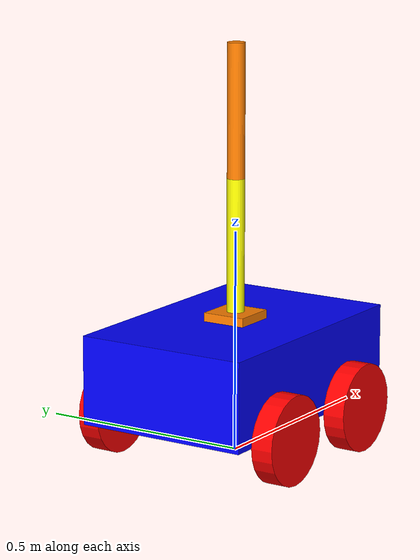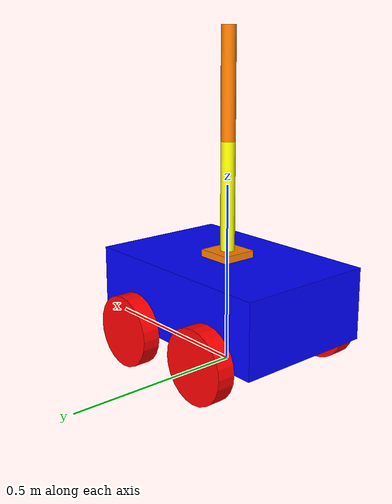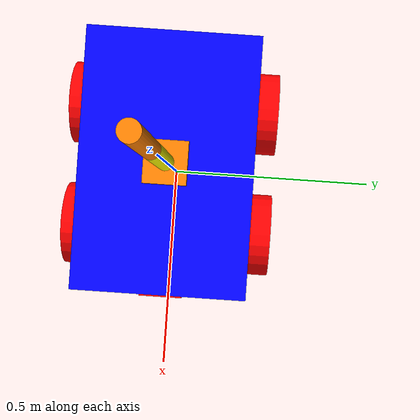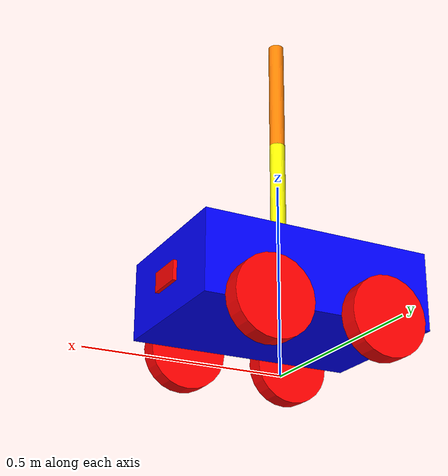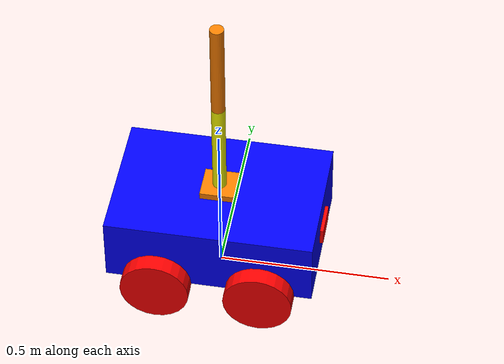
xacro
<?xml version="1.0"?>
<robot name = "my_robot" xmlns:xacro= "https://www.ros.org/wiki/xacro">

    <xacro:include filename="common_properties.xacro" />
    <xacro:include filename="mobile_base.xacro" />
    <xacro:include filename="mobile_base_gazebo.xacro" />
    <xacro:include filename="camera.xacro" />
    <xacro:include filename="arm.xacro"/>

</robot>

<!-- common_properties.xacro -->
<robot xmlns:xacro= "https://www.ros.org/wiki/xacro">

    <!--This is where the colours are defined -->
    <material name="red"><color rgba="1 0 0 1"/></material>
    <material name="green"><color rgba="0 1 0 1"/></material>
    <material name="blue"><color rgba="0 0 1 1"/></material>
    <material name="cyan"><color rgba="0 1 1 1"/></material>
    <material name="magenta"><color rgba="1 0 1 1"/></material>
    <material name="yellow"><color rgba="1 1 0 1"/></material>
    <material name="black"><color rgba="0 0 0 1"/></material>
    <material name="white"><color rgba="1 1 1 1"/></material>
    <material name="grey"><color rgba="0.5 0.5 0.5 1"/></material>
    <material name="orange"><color rgba="1 0.5 0 1"/></material>
    <material name="purple"><color rgba="0.5 0 0.5 1"/></material>
    <material name="pink"><color rgba="1 0.75 0.8 1"/></material>
    <material name="brown"><color rgba="0.6 0.3 0.1 1"/></material>
    <material name="light_grey"><color rgba="0.8 0.8 0.8 1"/></material>
    <material name="dark_grey"><color rgba="0.2 0.2 0.2 1"/></material>
    <material name="lime"><color rgba="0.5 1 0 1"/></material>
    <material name="teal"><color rgba="0 0.5 0.5 1"/></material>
    <material name="navy"><color rgba="0 0 0.5 1"/></material>
    <material name="maroon"><color rgba="0.5 0 0 1"/></material>
    <material name="olive"><color rgba="0.5 0.5 0 1"/></material>

    <xacro:macro name="box_inertia" params="m x y z o_xyz o_rpy">
        <inertial>
            <mass value="${m}"/>
            <origin xyz="${o_xyz}" rpy="${o_rpy}"/>
            <inertia
            ixx="${(m/12.0) * (y*y + z*z)}" ixy="0.0" ixz="0.0"
            iyy="${(m/12.0) * (x*x + z*z)}" iyz="0.0"
            izz="${(m/12.0) * (x*x + y*y)}"/>
        </inertial>
    </xacro:macro>

    <xacro:macro name="cylinder_inertia" params="m r l o_xyz o_rpy">
        <inertial>
            <mass value="${m}" />
            <origin xyz="${o_xyz}" rpy="${o_rpy}" />
            <inertia
            ixx="${(m/12.0) * (3*r*r + l*l)}" ixy="0.0" ixz="0.0"
            iyy="${(m/12.0) * (3*r*r + l*l)}" iyz="0.0"
            izz="${(m/2) * (r*r)}"/>
        </inertial>
    </xacro:macro>

        <xacro:macro name="sphere_inertia" params="m r o_xyz o_rpy">
        <inertial>
            <mass value="${m}" />
            <origin xyz="${o_xyz}" rpy="${o_rpy}" />
            <inertia
            ixx="${(2*m*r*r/5.0)}" ixy="0.0" ixz="0.0"
            iyy="${(2*m*r*r/5.0)}" iyz="0.0"
            izz="${(2*m*r*r/5.0)}"/>
        </inertial>
    </xacro:macro>

</robot>

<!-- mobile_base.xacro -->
<robot xmlns:xacro="http://www.ros.org/wiki/xacro">

    <xacro:property name="base_length" value="0.6" />
    <xacro:property name="base_width" value="0.4" />
    <xacro:property name="base_height" value="0.2" />
    <xacro:property name="wheel_radius" value="0.1" />
    <xacro:property name="wheel_length" value="0.05" />

    <link name="imu_frame"/>

    <joint name="imu_joint" type="fixed">
        <parent link="base_link"/>
        <child link="imu_frame"/>
        <origin xyz="0.0 0.0 0.08" rpy="0.0 0.0 0.0"/>
    </joint>

    <link name="base_link">
        <visual>
            <geometry>
                <box size="${base_length} ${base_width} ${base_height}" />
            </geometry>
            <origin xyz="0 0 ${base_height / 2.0}" rpy="0 0 0" />
            <material name="blue" />
        </visual>
        <collision>
            <geometry>
                <box size="${base_length} ${base_width} ${base_height}" />
            </geometry>
            <origin xyz="0 0 ${base_height / 2.0}" rpy="0 0 0" />
        </collision>
        <xacro:box_inertia m="100.0" l="${2*base_length}" w="${2*base_width}" h="${2*base_height}"
                           xyz="0 0 ${base_height / 2.0}" rpy="0 0 0" />
    </link>

    <xacro:macro name="wheel_link" params="prefix">
        <link name="${prefix}_wheel_link">
            <visual>
                <geometry>
                    <cylinder radius="${wheel_radius}" length="${wheel_length}" />
                </geometry>
                <origin xyz="0 0 0" rpy="${pi / 2.0} 0 0" />
                <material name="red" />
            </visual>
            <collision>
                <geometry>
                    <cylinder radius="${wheel_radius}" length="${wheel_length}" />
                </geometry>
                <origin xyz="0 0 0" rpy="${pi / 2.0} 0 0" />
            </collision>
            <xacro:cylinder_inertia m="10.0" r="${2*wheel_radius}" h="${2*wheel_length}"
                                    xyz="0 0 0" rpy="${pi / 2.0} 0 0" />
        </link>
    </xacro:macro>

    <xacro:wheel_link prefix="right_back" />
    <xacro:wheel_link prefix="left_back" />
    <xacro:wheel_link prefix="right_front" />
    <xacro:wheel_link prefix="left_front" />

    <link name="base_footprint">
    </link>

    <joint name="base_right_back_wheel_joint" type="continuous">
        <parent link="base_link" />
        <child link="right_back_wheel_link" />
        <origin xyz="${-base_length / 4.0} ${-(base_width + wheel_length) / 2.0} 0" rpy="0 0 0" />
        <axis xyz="0 1 0" />
    </joint>

    <joint name="base_right_front_wheel_joint" type="continuous">
        <parent link="base_link" />
        <child link="right_front_wheel_link" />
        <origin xyz="${(base_length) / 4.0} ${-(base_width + wheel_length) / 2.0} 0" rpy="0 0 0" />
        <axis xyz="0 1 0" />
    </joint>

     <joint name="base_left_back_wheel_joint" type="continuous">
        <parent link="base_link" />
        <child link="left_back_wheel_link" />
        <origin xyz="${-base_length / 4.0} ${(base_width + wheel_length) / 2.0} 0" rpy="0 0 0" />
        <axis xyz="0 1 0" />
    </joint>

    <joint name="base_left_front_wheel_joint" type="continuous">
        <parent link="base_link" />
        <child link="left_front_wheel_link" />
        <origin xyz="${base_length / 4.0} ${(base_width + wheel_length) / 2.0} 0" rpy="0 0 0" />
        <axis xyz="0 1 0" />
    </joint>

    <joint name="base_footprint_joint" type="fixed">
        <parent link="base_footprint" />
        <child link="base_link" />
        <origin xyz="0 0 ${wheel_radius}" rpy="0 0 0" />
    </joint>

</robot>

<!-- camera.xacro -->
<robot xmlns:xacro="http://www.ros.org/wiki/xacro">

<xacro:property name="camera_length" value="0.01" />
<xacro:property name="camera_width" value="0.1" />
<xacro:property name="camera_height" value="0.05" />

    <link name="camera_link">
        <visual>
            <geometry>
                <box size="${camera_length} ${camera_width} ${camera_height}" />
            </geometry>
            <material name="red"/>
        </visual>
        <collision>
            <geometry>
                <box size="${camera_length} ${camera_width} ${camera_height}" />
            </geometry>
        </collision>
        <xacro:box_inertia m ="0.1" x= "${camera_length}" y ="${camera_width}" z ="${camera_height}"
                            o_xyz = "0 0 0" o_rpy = "0 0 0" />
    </link>

    <joint name="base_camera_joint" type="fixed">
        <parent link="base_link" />
        <child link="camera_link" />
        <origin xyz="${(base_length + camera_length) / 2.0 } 0 ${base_height / 2.0}" rpy="0 0 0" />

    </joint>

    <link name = "camera_link_optical"/>

    <joint name="camera_optical_joint" type="fixed">

        <origin xyz="0 0 0" rpy="${-pi/2} 0 ${-pi/2}"/>
        <parent link="camera_link"/>
        <child link="camera_link_optical"/>
    </joint>

    <gazebo reference = "camera_link">
        <sensor name = "camera" type = "camera" >
            <camera>
                <horizontal_fov>1.3962634</horizontal_fov>
                <image>
                    <width>640</width>
                    <height>480</height>
                    <format>R8G8B8</format>
                </image>
                <clip>
                    <near>0.1</near>
                    <far>15</far>
                </clip>
                <noise>
                    <type>gaussian</type>
                    <mean>0.0</mean>
                    <stddev>0.007</stddev>
                </noise>
                <optical_frame_id>camera_link_optical</optical_frame_id>
                <camera_info_topic>camera/camera_info</camera_info_topic>
            </camera>
            <always_on>1</always_on>
            <update_rate>20</update_rate>
            <visualize>true</visualize>
            <topic>camera/image_raw</topic>
        </sensor>
    </gazebo>
</robot>

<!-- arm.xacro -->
<robot name = "arm" xmlns:xacro= "https://www.ros.org/wiki/xacro">

    <xacro:property name="arm_base_length" value="0.1" />
    <xacro:property name="arm_base_width" value="0.1" />
    <xacro:property name="arm_base_height" value="0.02" />
    <xacro:property name= "arm_cylinder_radius" value = "0.02"/>
    <xacro:property name= "arm_cylinder_length" value = "0.3"/>

    <link name="arm_base_link">
        <visual>
            <origin xyz="0 0 0" rpy="0 0 0" />
            <geometry>
                <box size="${arm_base_length} ${arm_base_width} ${arm_base_height}" />
            </geometry>
            <material name="orange"/>
        </visual>
        <collision>
            <origin xyz="0 0 0" rpy="0 0 0" />
            <geometry>
                <box size="${arm_base_length} ${arm_base_width} ${arm_base_height}" />
            </geometry>
        </collision>
        <xacro:box_inertia m="0.5" x="${arm_base_length}" y="${arm_base_width}" z="${arm_base_height}"
                           o_xyz="0 0 0" o_rpy="0 0 0" />
    </link>

    <link name="forearm_link">
        <visual>
            <origin xyz="0 0 ${arm_cylinder_length / 2.0}" rpy="0 0 0" />
            <geometry>
                <cylinder radius="${arm_cylinder_radius}" length="${arm_cylinder_length}" />
            </geometry>
            <material name="yellow"/>
        </visual>
        <collision>
            <origin xyz="0 0 ${arm_cylinder_length / 2.0}" rpy="0 0 0" />
            <geometry>
                <cylinder radius="${arm_cylinder_radius}" length="${arm_cylinder_length}" />
            </geometry>
        </collision>
        <xacro:cylinder_inertia m="0.3" r="${arm_cylinder_radius}" l="${arm_cylinder_length}"
                           o_xyz="0 0 ${arm_cylinder_length / 2.0}" o_rpy="0 0 0" />
    </link>

    <link name="hand_link">
        <visual>
            <origin xyz="0 0 ${arm_cylinder_length / 2.0}" rpy="0 0 0" />
            <geometry>
                <cylinder radius="${arm_cylinder_radius}" length="${arm_cylinder_length}" />
            </geometry>
            <material name="orange"/>
        </visual>
        <collision>
            <origin xyz="0 0 ${arm_cylinder_length / 2.0}" rpy="0 0 0" />
            <geometry>
                <cylinder radius="${arm_cylinder_radius}" length="${arm_cylinder_length}" />
            </geometry>
        </collision>
        <xacro:cylinder_inertia m="0.3" r="${arm_cylinder_radius}" l="${arm_cylinder_length}"
                           o_xyz="0 0 ${arm_cylinder_length / 2.0}" o_rpy="0 0 0" />
    </link>

    <joint name="base_forearm" type="revolute">
        <parent link="arm_base_link" />
        <child link="forearm_link" />
        <origin xyz="0 0 ${arm_base_height / 2.0}" rpy="0 0 0" />
        <axis xyz="0 1 0" />
        <limit lower="0" upper="${pi/2.0}" effort="100" velocity="100" />
        <dynamics friction = "0.3" damping = "0.3"/>
    </joint>

        <joint name="forearm_hand" type="revolute">
        <parent link="forearm_link" />
        <child link="hand_link" />
        <origin xyz="0 0 ${arm_cylinder_length}" rpy="0 0 0" />
        <axis xyz="0 1 0" />
        <limit lower="0" upper="${pi/2.0}" effort="100" velocity="100" />
        <dynamics friction = "0.3" damping = "0.3"/>
    </joint>

    <joint name="arm_joint" type="fixed">
        <parent link="base_link" />
        <child link="arm_base_link" />
        <origin xyz="0 0 ${(base_height) + (arm_base_height)/2.0} " rpy="0 0 0" />
    </joint>
</robot >
